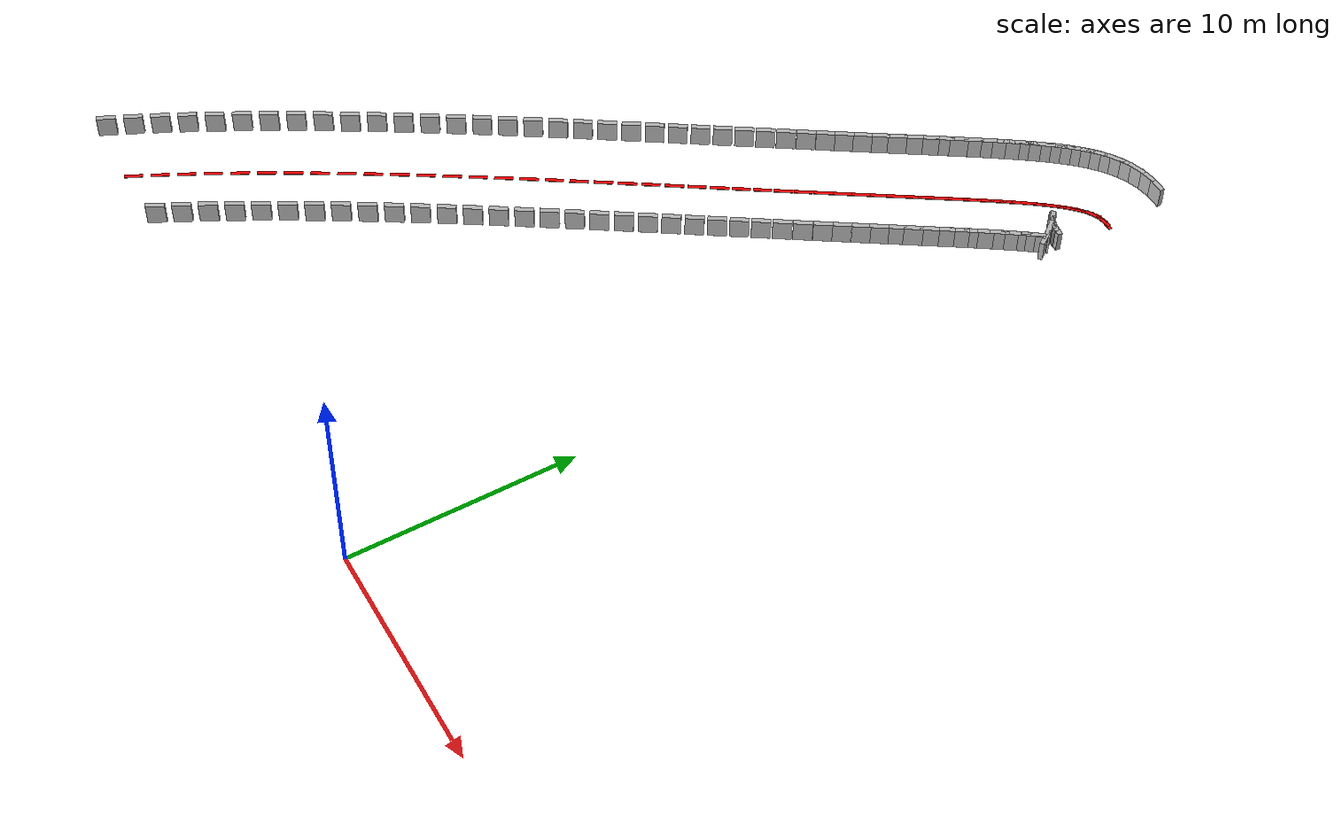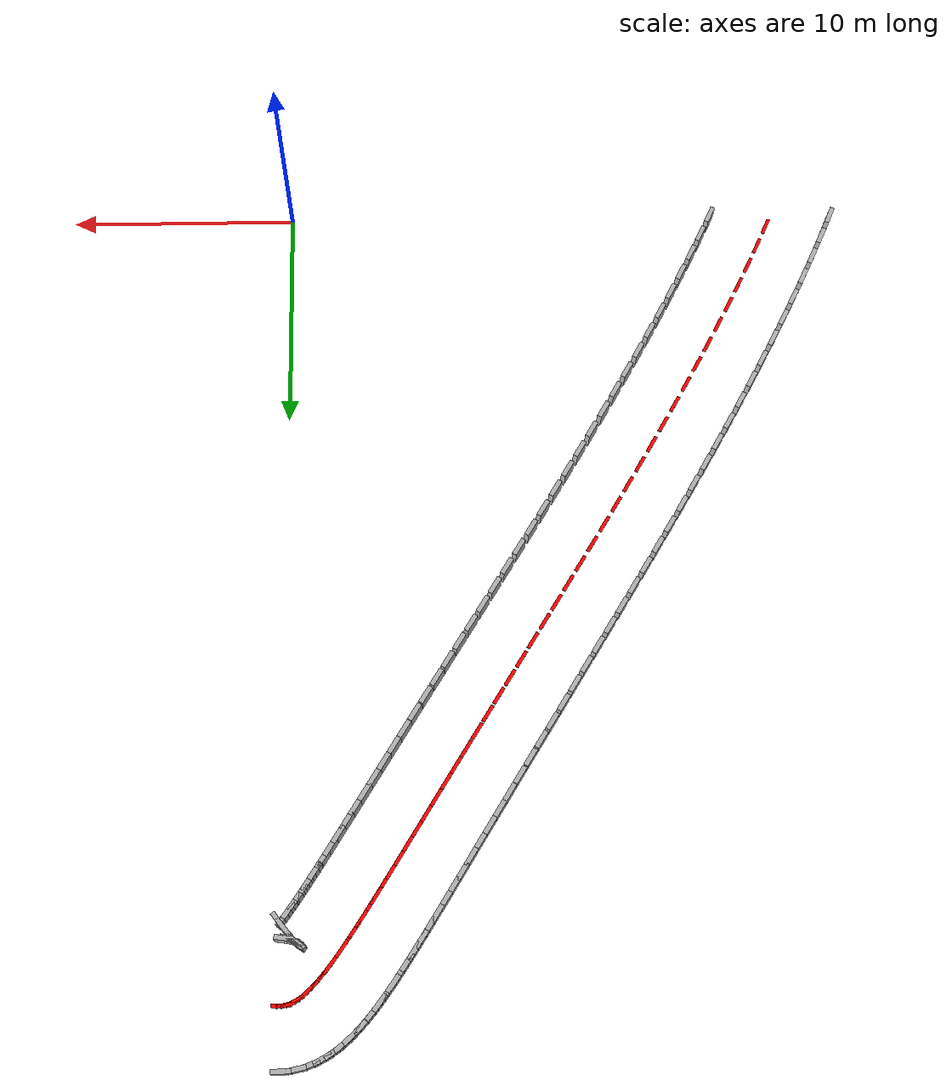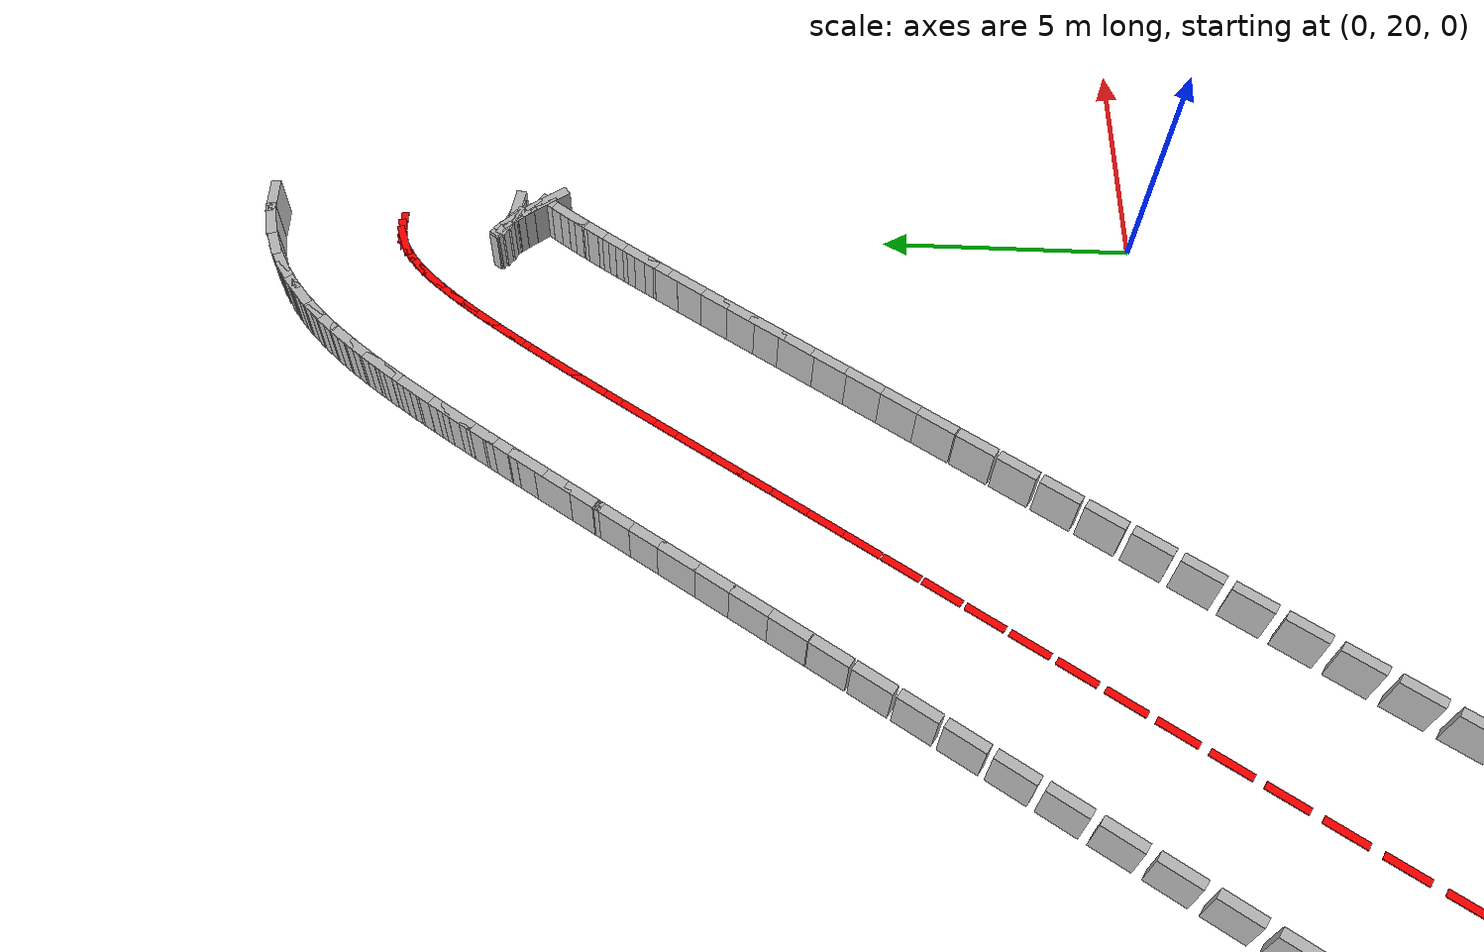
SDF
<sdf version="1.7">
 <model name="track_walls">
  <static>true</static>
  <link name="left_109">
   <pose>-24.509 0.520 0.5 0 0 1.150</pose>
   <collision name="c"><geometry><box><size>0.8 0.2 1.0</size></box></geometry></collision>
   <visual name="v"><geometry><box><size>0.8 0.2 1.0</size></box></geometry></visual>
  </link>
  <link name="left_110">
   <pose>-24.034 1.558 0.5 0 0 1.135</pose>
   <collision name="c"><geometry><box><size>0.8 0.2 1.0</size></box></geometry></collision>
   <visual name="v"><geometry><box><size>0.8 0.2 1.0</size></box></geometry></visual>
  </link>
  <link name="center_110">
   <pose>-21.768 0.502 0.010 0 0 1.135</pose>
   <visual name="v">
    <geometry><box><size>0.8 0.15 0.02</size></box></geometry>
    <material><ambient>1 0 0 1</ambient><diffuse>1 0 0 1</diffuse></material>
   </visual>
  </link>
  <link name="left_111">
   <pose>-23.543 2.593 0.5 0 0 1.121</pose>
   <collision name="c"><geometry><box><size>0.8 0.2 1.0</size></box></geometry></collision>
   <visual name="v"><geometry><box><size>0.8 0.2 1.0</size></box></geometry></visual>
  </link>
  <link name="right_111">
   <pose>-19.041 0.419 0.5 0 0 1.121</pose>
   <collision name="c"><geometry><box><size>0.8 0.2 1.0</size></box></geometry></collision>
   <visual name="v"><geometry><box><size>0.8 0.2 1.0</size></box></geometry></visual>
  </link>
  <link name="center_111">
   <pose>-21.292 1.506 0.010 0 0 1.121</pose>
   <visual name="v">
    <geometry><box><size>0.8 0.15 0.02</size></box></geometry>
    <material><ambient>1 0 0 1</ambient><diffuse>1 0 0 1</diffuse></material>
   </visual>
  </link>
  <link name="left_112">
   <pose>-23.037 3.624 0.5 0 0 1.108</pose>
   <collision name="c"><geometry><box><size>0.8 0.2 1.0</size></box></geometry></collision>
   <visual name="v"><geometry><box><size>0.8 0.2 1.0</size></box></geometry></visual>
  </link>
  <link name="right_112">
   <pose>-18.562 1.393 0.5 0 0 1.108</pose>
   <collision name="c"><geometry><box><size>0.8 0.2 1.0</size></box></geometry></collision>
   <visual name="v"><geometry><box><size>0.8 0.2 1.0</size></box></geometry></visual>
  </link>
  <link name="center_112">
   <pose>-20.800 2.508 0.010 0 0 1.108</pose>
   <visual name="v">
    <geometry><box><size>0.8 0.15 0.02</size></box></geometry>
    <material><ambient>1 0 0 1</ambient><diffuse>1 0 0 1</diffuse></material>
   </visual>
  </link>
  <link name="left_113">
   <pose>-22.517 4.650 0.5 0 0 1.097</pose>
   <collision name="c"><geometry><box><size>0.8 0.2 1.0</size></box></geometry></collision>
   <visual name="v"><geometry><box><size>0.8 0.2 1.0</size></box></geometry></visual>
  </link>
  <link name="right_113">
   <pose>-18.069 2.367 0.5 0 0 1.097</pose>
   <collision name="c"><geometry><box><size>0.8 0.2 1.0</size></box></geometry></collision>
   <visual name="v"><geometry><box><size>0.8 0.2 1.0</size></box></geometry></visual>
  </link>
  <link name="center_113">
   <pose>-20.293 3.509 0.010 0 0 1.097</pose>
   <visual name="v">
    <geometry><box><size>0.8 0.15 0.02</size></box></geometry>
    <material><ambient>1 0 0 1</ambient><diffuse>1 0 0 1</diffuse></material>
   </visual>
  </link>
  <link name="left_114">
   <pose>-21.986 5.672 0.5 0 0 1.086</pose>
   <collision name="c"><geometry><box><size>0.8 0.2 1.0</size></box></geometry></collision>
   <visual name="v"><geometry><box><size>0.8 0.2 1.0</size></box></geometry></visual>
  </link>
  <link name="right_114">
   <pose>-17.563 3.340 0.5 0 0 1.086</pose>
   <collision name="c"><geometry><box><size>0.8 0.2 1.0</size></box></geometry></collision>
   <visual name="v"><geometry><box><size>0.8 0.2 1.0</size></box></geometry></visual>
  </link>
  <link name="center_114">
   <pose>-19.774 4.506 0.010 0 0 1.086</pose>
   <visual name="v">
    <geometry><box><size>0.8 0.15 0.02</size></box></geometry>
    <material><ambient>1 0 0 1</ambient><diffuse>1 0 0 1</diffuse></material>
   </visual>
  </link>
  <link name="left_115">
   <pose>-21.444 6.688 0.5 0 0 1.076</pose>
   <collision name="c"><geometry><box><size>0.8 0.2 1.0</size></box></geometry></collision>
   <visual name="v"><geometry><box><size>0.8 0.2 1.0</size></box></geometry></visual>
  </link>
  <link name="right_115">
   <pose>-17.044 4.312 0.5 0 0 1.076</pose>
   <collision name="c"><geometry><box><size>0.8 0.2 1.0</size></box></geometry></collision>
   <visual name="v"><geometry><box><size>0.8 0.2 1.0</size></box></geometry></visual>
  </link>
  <link name="center_115">
   <pose>-19.244 5.500 0.010 0 0 1.076</pose>
   <visual name="v">
    <geometry><box><size>0.8 0.15 0.02</size></box></geometry>
    <material><ambient>1 0 0 1</ambient><diffuse>1 0 0 1</diffuse></material>
   </visual>
  </link>
  <link name="left_116">
   <pose>-20.892 7.697 0.5 0 0 1.067</pose>
   <collision name="c"><geometry><box><size>0.8 0.2 1.0</size></box></geometry></collision>
   <visual name="v"><geometry><box><size>0.8 0.2 1.0</size></box></geometry></visual>
  </link>
  <link name="right_116">
   <pose>-16.514 5.282 0.5 0 0 1.067</pose>
   <collision name="c"><geometry><box><size>0.8 0.2 1.0</size></box></geometry></collision>
   <visual name="v"><geometry><box><size>0.8 0.2 1.0</size></box></geometry></visual>
  </link>
  <link name="center_116">
   <pose>-18.703 6.489 0.010 0 0 1.067</pose>
   <visual name="v">
    <geometry><box><size>0.8 0.15 0.02</size></box></geometry>
    <material><ambient>1 0 0 1</ambient><diffuse>1 0 0 1</diffuse></material>
   </visual>
  </link>
  <link name="left_117">
   <pose>-20.334 8.699 0.5 0 0 1.058</pose>
   <collision name="c"><geometry><box><size>0.8 0.2 1.0</size></box></geometry></collision>
   <visual name="v"><geometry><box><size>0.8 0.2 1.0</size></box></geometry></visual>
  </link>
  <link name="right_117">
   <pose>-15.976 6.248 0.5 0 0 1.058</pose>
   <collision name="c"><geometry><box><size>0.8 0.2 1.0</size></box></geometry></collision>
   <visual name="v"><geometry><box><size>0.8 0.2 1.0</size></box></geometry></visual>
  </link>
  <link name="center_117">
   <pose>-18.155 7.473 0.010 0 0 1.058</pose>
   <visual name="v">
    <geometry><box><size>0.8 0.15 0.02</size></box></geometry>
    <material><ambient>1 0 0 1</ambient><diffuse>1 0 0 1</diffuse></material>
   </visual>
  </link>
  <link name="left_118">
   <pose>-19.770 9.693 0.5 0 0 1.051</pose>
   <collision name="c"><geometry><box><size>0.8 0.2 1.0</size></box></geometry></collision>
   <visual name="v"><geometry><box><size>0.8 0.2 1.0</size></box></geometry></visual>
  </link>
  <link name="right_118">
   <pose>-15.430 7.209 0.5 0 0 1.051</pose>
   <collision name="c"><geometry><box><size>0.8 0.2 1.0</size></box></geometry></collision>
   <visual name="v"><geometry><box><size>0.8 0.2 1.0</size></box></geometry></visual>
  </link>
  <link name="center_118">
   <pose>-17.600 8.451 0.010 0 0 1.051</pose>
   <visual name="v">
    <geometry><box><size>0.8 0.15 0.02</size></box></geometry>
    <material><ambient>1 0 0 1</ambient><diffuse>1 0 0 1</diffuse></material>
   </visual>
  </link>
  <link name="left_119">
   <pose>-19.201 10.678 0.5 0 0 1.044</pose>
   <collision name="c"><geometry><box><size>0.8 0.2 1.0</size></box></geometry></collision>
   <visual name="v"><geometry><box><size>0.8 0.2 1.0</size></box></geometry></visual>
  </link>
  <link name="right_119">
   <pose>-14.878 8.165 0.5 0 0 1.044</pose>
   <collision name="c"><geometry><box><size>0.8 0.2 1.0</size></box></geometry></collision>
   <visual name="v"><geometry><box><size>0.8 0.2 1.0</size></box></geometry></visual>
  </link>
  <link name="center_119">
   <pose>-17.040 9.422 0.010 0 0 1.044</pose>
   <visual name="v">
    <geometry><box><size>0.8 0.15 0.02</size></box></geometry>
    <material><ambient>1 0 0 1</ambient><diffuse>1 0 0 1</diffuse></material>
   </visual>
  </link>
  <link name="left_120">
   <pose>-18.629 11.655 0.5 0 0 1.038</pose>
   <collision name="c"><geometry><box><size>0.8 0.2 1.0</size></box></geometry></collision>
   <visual name="v"><geometry><box><size>0.8 0.2 1.0</size></box></geometry></visual>
  </link>
  <link name="right_120">
   <pose>-14.322 9.115 0.5 0 0 1.038</pose>
   <collision name="c"><geometry><box><size>0.8 0.2 1.0</size></box></geometry></collision>
   <visual name="v"><geometry><box><size>0.8 0.2 1.0</size></box></geometry></visual>
  </link>
  <link name="center_120">
   <pose>-16.476 10.385 0.010 0 0 1.038</pose>
   <visual name="v">
    <geometry><box><size>0.8 0.15 0.02</size></box></geometry>
    <material><ambient>1 0 0 1</ambient><diffuse>1 0 0 1</diffuse></material>
   </visual>
  </link>
  <link name="left_121">
   <pose>-18.056 12.621 0.5 0 0 1.033</pose>
   <collision name="c"><geometry><box><size>0.8 0.2 1.0</size></box></geometry></collision>
   <visual name="v"><geometry><box><size>0.8 0.2 1.0</size></box></geometry></visual>
  </link>
  <link name="right_121">
   <pose>-13.763 10.058 0.5 0 0 1.033</pose>
   <collision name="c"><geometry><box><size>0.8 0.2 1.0</size></box></geometry></collision>
   <visual name="v"><geometry><box><size>0.8 0.2 1.0</size></box></geometry></visual>
  </link>
  <link name="center_121">
   <pose>-15.909 11.339 0.010 0 0 1.033</pose>
   <visual name="v">
    <geometry><box><size>0.8 0.15 0.02</size></box></geometry>
    <material><ambient>1 0 0 1</ambient><diffuse>1 0 0 1</diffuse></material>
   </visual>
  </link>
  <link name="left_122">
   <pose>-17.482 13.576 0.5 0 0 1.028</pose>
   <collision name="c"><geometry><box><size>0.8 0.2 1.0</size></box></geometry></collision>
   <visual name="v"><geometry><box><size>0.8 0.2 1.0</size></box></geometry></visual>
  </link>
  <link name="right_122">
   <pose>-13.201 10.993 0.5 0 0 1.028</pose>
   <collision name="c"><geometry><box><size>0.8 0.2 1.0</size></box></geometry></collision>
   <visual name="v"><geometry><box><size>0.8 0.2 1.0</size></box></geometry></visual>
  </link>
  <link name="center_122">
   <pose>-15.342 12.285 0.010 0 0 1.028</pose>
   <visual name="v">
    <geometry><box><size>0.8 0.15 0.02</size></box></geometry>
    <material><ambient>1 0 0 1</ambient><diffuse>1 0 0 1</diffuse></material>
   </visual>
  </link>
  <link name="left_123">
   <pose>-16.910 14.520 0.5 0 0 1.024</pose>
   <collision name="c"><geometry><box><size>0.8 0.2 1.0</size></box></geometry></collision>
   <visual name="v"><geometry><box><size>0.8 0.2 1.0</size></box></geometry></visual>
  </link>
  <link name="right_123">
   <pose>-12.640 11.919 0.5 0 0 1.024</pose>
   <collision name="c"><geometry><box><size>0.8 0.2 1.0</size></box></geometry></collision>
   <visual name="v"><geometry><box><size>0.8 0.2 1.0</size></box></geometry></visual>
  </link>
  <link name="center_123">
   <pose>-14.775 13.220 0.010 0 0 1.024</pose>
   <visual name="v">
    <geometry><box><size>0.8 0.15 0.02</size></box></geometry>
    <material><ambient>1 0 0 1</ambient><diffuse>1 0 0 1</diffuse></material>
   </visual>
  </link>
  <link name="left_124">
   <pose>-16.340 15.452 0.5 0 0 1.020</pose>
   <collision name="c"><geometry><box><size>0.8 0.2 1.0</size></box></geometry></collision>
   <visual name="v"><geometry><box><size>0.8 0.2 1.0</size></box></geometry></visual>
  </link>
  <link name="right_124">
   <pose>-12.079 12.836 0.5 0 0 1.020</pose>
   <collision name="c"><geometry><box><size>0.8 0.2 1.0</size></box></geometry></collision>
   <visual name="v"><geometry><box><size>0.8 0.2 1.0</size></box></geometry></visual>
  </link>
  <link name="center_124">
   <pose>-14.209 14.144 0.010 0 0 1.020</pose>
   <visual name="v">
    <geometry><box><size>0.8 0.15 0.02</size></box></geometry>
    <material><ambient>1 0 0 1</ambient><diffuse>1 0 0 1</diffuse></material>
   </visual>
  </link>
  <link name="left_125">
   <pose>-15.773 16.371 0.5 0 0 1.017</pose>
   <collision name="c"><geometry><box><size>0.8 0.2 1.0</size></box></geometry></collision>
   <visual name="v"><geometry><box><size>0.8 0.2 1.0</size></box></geometry></visual>
  </link>
  <link name="right_125">
   <pose>-11.520 13.742 0.5 0 0 1.017</pose>
   <collision name="c"><geometry><box><size>0.8 0.2 1.0</size></box></geometry></collision>
   <visual name="v"><geometry><box><size>0.8 0.2 1.0</size></box></geometry></visual>
  </link>
  <link name="center_125">
   <pose>-13.647 15.057 0.010 0 0 1.017</pose>
   <visual name="v">
    <geometry><box><size>0.8 0.15 0.02</size></box></geometry>
    <material><ambient>1 0 0 1</ambient><diffuse>1 0 0 1</diffuse></material>
   </visual>
  </link>
  <link name="left_126">
   <pose>-15.211 17.277 0.5 0 0 1.014</pose>
   <collision name="c"><geometry><box><size>0.8 0.2 1.0</size></box></geometry></collision>
   <visual name="v"><geometry><box><size>0.8 0.2 1.0</size></box></geometry></visual>
  </link>
  <link name="right_126">
   <pose>-10.965 14.636 0.5 0 0 1.014</pose>
   <collision name="c"><geometry><box><size>0.8 0.2 1.0</size></box></geometry></collision>
   <visual name="v"><geometry><box><size>0.8 0.2 1.0</size></box></geometry></visual>
  </link>
  <link name="center_126">
   <pose>-13.088 15.957 0.010 0 0 1.014</pose>
   <visual name="v">
    <geometry><box><size>0.8 0.15 0.02</size></box></geometry>
    <material><ambient>1 0 0 1</ambient><diffuse>1 0 0 1</diffuse></material>
   </visual>
  </link>
  <link name="left_127">
   <pose>-14.655 18.169 0.5 0 0 1.012</pose>
   <collision name="c"><geometry><box><size>0.8 0.2 1.0</size></box></geometry></collision>
   <visual name="v"><geometry><box><size>0.8 0.2 1.0</size></box></geometry></visual>
  </link>
  <link name="right_127">
   <pose>-10.415 15.519 0.5 0 0 1.012</pose>
   <collision name="c"><geometry><box><size>0.8 0.2 1.0</size></box></geometry></collision>
   <visual name="v"><geometry><box><size>0.8 0.2 1.0</size></box></geometry></visual>
  </link>
  <link name="center_127">
   <pose>-12.535 16.844 0.010 0 0 1.012</pose>
   <visual name="v">
    <geometry><box><size>0.8 0.15 0.02</size></box></geometry>
    <material><ambient>1 0 0 1</ambient><diffuse>1 0 0 1</diffuse></material>
   </visual>
  </link>
  <link name="left_128">
   <pose>-14.106 19.045 0.5 0 0 1.011</pose>
   <collision name="c"><geometry><box><size>0.8 0.2 1.0</size></box></geometry></collision>
   <visual name="v"><geometry><box><size>0.8 0.2 1.0</size></box></geometry></visual>
  </link>
  <link name="right_128">
   <pose>-9.870 16.389 0.5 0 0 1.011</pose>
   <collision name="c"><geometry><box><size>0.8 0.2 1.0</size></box></geometry></collision>
   <visual name="v"><geometry><box><size>0.8 0.2 1.0</size></box></geometry></visual>
  </link>
  <link name="center_128">
   <pose>-11.988 17.717 0.010 0 0 1.011</pose>
   <visual name="v">
    <geometry><box><size>0.8 0.15 0.02</size></box></geometry>
    <material><ambient>1 0 0 1</ambient><diffuse>1 0 0 1</diffuse></material>
   </visual>
  </link>
  <link name="left_129">
   <pose>-13.565 19.907 0.5 0 0 1.009</pose>
   <collision name="c"><geometry><box><size>0.8 0.2 1.0</size></box></geometry></collision>
   <visual name="v"><geometry><box><size>0.8 0.2 1.0</size></box></geometry></visual>
  </link>
  <link name="right_129">
   <pose>-9.333 17.244 0.5 0 0 1.009</pose>
   <collision name="c"><geometry><box><size>0.8 0.2 1.0</size></box></geometry></collision>
   <visual name="v"><geometry><box><size>0.8 0.2 1.0</size></box></geometry></visual>
  </link>
  <link name="center_129">
   <pose>-11.449 18.576 0.010 0 0 1.009</pose>
   <visual name="v">
    <geometry><box><size>0.8 0.15 0.02</size></box></geometry>
    <material><ambient>1 0 0 1</ambient><diffuse>1 0 0 1</diffuse></material>
   </visual>
  </link>
  <link name="left_130">
   <pose>-13.033 20.752 0.5 0 0 1.008</pose>
   <collision name="c"><geometry><box><size>0.8 0.2 1.0</size></box></geometry></collision>
   <visual name="v"><geometry><box><size>0.8 0.2 1.0</size></box></geometry></visual>
  </link>
  <link name="right_130">
   <pose>-8.803 18.086 0.5 0 0 1.008</pose>
   <collision name="c"><geometry><box><size>0.8 0.2 1.0</size></box></geometry></collision>
   <visual name="v"><geometry><box><size>0.8 0.2 1.0</size></box></geometry></visual>
  </link>
  <link name="center_130">
   <pose>-10.918 19.419 0.010 0 0 1.008</pose>
   <visual name="v">
    <geometry><box><size>0.8 0.15 0.02</size></box></geometry>
    <material><ambient>1 0 0 1</ambient><diffuse>1 0 0 1</diffuse></material>
   </visual>
  </link>
  <link name="left_131">
   <pose>-12.510 21.580 0.5 0 0 1.008</pose>
   <collision name="c"><geometry><box><size>0.8 0.2 1.0</size></box></geometry></collision>
   <visual name="v"><geometry><box><size>0.8 0.2 1.0</size></box></geometry></visual>
  </link>
  <link name="right_131">
   <pose>-8.282 18.912 0.5 0 0 1.008</pose>
   <collision name="c"><geometry><box><size>0.8 0.2 1.0</size></box></geometry></collision>
   <visual name="v"><geometry><box><size>0.8 0.2 1.0</size></box></geometry></visual>
  </link>
  <link name="center_131">
   <pose>-10.396 20.246 0.010 0 0 1.008</pose>
   <visual name="v">
    <geometry><box><size>0.8 0.15 0.02</size></box></geometry>
    <material><ambient>1 0 0 1</ambient><diffuse>1 0 0 1</diffuse></material>
   </visual>
  </link>
  <link name="left_132">
   <pose>-11.998 22.392 0.5 0 0 1.008</pose>
   <collision name="c"><geometry><box><size>0.8 0.2 1.0</size></box></geometry></collision>
   <visual name="v"><geometry><box><size>0.8 0.2 1.0</size></box></geometry></visual>
  </link>
  <link name="right_132">
   <pose>-7.770 19.722 0.5 0 0 1.008</pose>
   <collision name="c"><geometry><box><size>0.8 0.2 1.0</size></box></geometry></collision>
   <visual name="v"><geometry><box><size>0.8 0.2 1.0</size></box></geometry></visual>
  </link>
  <link name="center_132">
   <pose>-9.884 21.057 0.010 0 0 1.008</pose>
   <visual name="v">
    <geometry><box><size>0.8 0.15 0.02</size></box></geometry>
    <material><ambient>1 0 0 1</ambient><diffuse>1 0 0 1</diffuse></material>
   </visual>
  </link>
  <link name="left_133">
   <pose>-11.497 23.185 0.5 0 0 1.008</pose>
   <collision name="c"><geometry><box><size>0.8 0.2 1.0</size></box></geometry></collision>
   <visual name="v"><geometry><box><size>0.8 0.2 1.0</size></box></geometry></visual>
  </link>
  <link name="right_133">
   <pose>-7.269 20.516 0.5 0 0 1.008</pose>
   <collision name="c"><geometry><box><size>0.8 0.2 1.0</size></box></geometry></collision>
   <visual name="v"><geometry><box><size>0.8 0.2 1.0</size></box></geometry></visual>
  </link>
  <link name="center_133">
   <pose>-9.383 21.850 0.010 0 0 1.008</pose>
   <visual name="v">
    <geometry><box><size>0.8 0.15 0.02</size></box></geometry>
    <material><ambient>1 0 0 1</ambient><diffuse>1 0 0 1</diffuse></material>
   </visual>
  </link>
  <link name="left_134">
   <pose>-11.008 23.960 0.5 0 0 1.008</pose>
   <collision name="c"><geometry><box><size>0.8 0.2 1.0</size></box></geometry></collision>
   <visual name="v"><geometry><box><size>0.8 0.2 1.0</size></box></geometry></visual>
  </link>
  <link name="right_134">
   <pose>-6.779 21.292 0.5 0 0 1.008</pose>
   <collision name="c"><geometry><box><size>0.8 0.2 1.0</size></box></geometry></collision>
   <visual name="v"><geometry><box><size>0.8 0.2 1.0</size></box></geometry></visual>
  </link>
  <link name="center_134">
   <pose>-8.894 22.626 0.010 0 0 1.008</pose>
   <visual name="v">
    <geometry><box><size>0.8 0.15 0.02</size></box></geometry>
    <material><ambient>1 0 0 1</ambient><diffuse>1 0 0 1</diffuse></material>
   </visual>
  </link>
  <link name="left_135">
   <pose>-10.532 24.715 0.5 0 0 1.008</pose>
   <collision name="c"><geometry><box><size>0.8 0.2 1.0</size></box></geometry></collision>
   <visual name="v"><geometry><box><size>0.8 0.2 1.0</size></box></geometry></visual>
  </link>
  <link name="right_135">
   <pose>-6.302 22.049 0.5 0 0 1.008</pose>
   <collision name="c"><geometry><box><size>0.8 0.2 1.0</size></box></geometry></collision>
   <visual name="v"><geometry><box><size>0.8 0.2 1.0</size></box></geometry></visual>
  </link>
  <link name="center_135">
   <pose>-8.417 23.382 0.010 0 0 1.008</pose>
   <visual name="v">
    <geometry><box><size>0.8 0.15 0.02</size></box></geometry>
    <material><ambient>1 0 0 1</ambient><diffuse>1 0 0 1</diffuse></material>
   </visual>
  </link>
  <link name="left_136">
   <pose>-10.068 25.451 0.5 0 0 1.009</pose>
   <collision name="c"><geometry><box><size>0.8 0.2 1.0</size></box></geometry></collision>
   <visual name="v"><geometry><box><size>0.8 0.2 1.0</size></box></geometry></visual>
  </link>
  <link name="right_136">
   <pose>-5.836 22.788 0.5 0 0 1.009</pose>
   <collision name="c"><geometry><box><size>0.8 0.2 1.0</size></box></geometry></collision>
   <visual name="v"><geometry><box><size>0.8 0.2 1.0</size></box></geometry></visual>
  </link>
  <link name="center_136">
   <pose>-7.952 24.120 0.010 0 0 1.009</pose>
   <visual name="v">
    <geometry><box><size>0.8 0.15 0.02</size></box></geometry>
    <material><ambient>1 0 0 1</ambient><diffuse>1 0 0 1</diffuse></material>
   </visual>
  </link>
  <link name="left_137">
   <pose>-9.617 26.168 0.5 0 0 1.010</pose>
   <collision name="c"><geometry><box><size>0.8 0.2 1.0</size></box></geometry></collision>
   <visual name="v"><geometry><box><size>0.8 0.2 1.0</size></box></geometry></visual>
  </link>
  <link name="right_137">
   <pose>-5.384 23.507 0.5 0 0 1.010</pose>
   <collision name="c"><geometry><box><size>0.8 0.2 1.0</size></box></geometry></collision>
   <visual name="v"><geometry><box><size>0.8 0.2 1.0</size></box></geometry></visual>
  </link>
  <link name="center_137">
   <pose>-7.501 24.837 0.010 0 0 1.010</pose>
   <visual name="v">
    <geometry><box><size>0.8 0.15 0.02</size></box></geometry>
    <material><ambient>1 0 0 1</ambient><diffuse>1 0 0 1</diffuse></material>
   </visual>
  </link>
  <link name="left_138">
   <pose>-9.181 26.863 0.5 0 0 1.010</pose>
   <collision name="c"><geometry><box><size>0.8 0.2 1.0</size></box></geometry></collision>
   <visual name="v"><geometry><box><size>0.8 0.2 1.0</size></box></geometry></visual>
  </link>
  <link name="right_138">
   <pose>-4.945 24.206 0.5 0 0 1.010</pose>
   <collision name="c"><geometry><box><size>0.8 0.2 1.0</size></box></geometry></collision>
   <visual name="v"><geometry><box><size>0.8 0.2 1.0</size></box></geometry></visual>
  </link>
  <link name="center_138">
   <pose>-7.063 25.535 0.010 0 0 1.010</pose>
   <visual name="v">
    <geometry><box><size>0.8 0.15 0.02</size></box></geometry>
    <material><ambient>1 0 0 1</ambient><diffuse>1 0 0 1</diffuse></material>
   </visual>
  </link>
  <link name="left_139">
   <pose>-8.758 27.538 0.5 0 0 1.011</pose>
   <collision name="c"><geometry><box><size>0.8 0.2 1.0</size></box></geometry></collision>
   <visual name="v"><geometry><box><size>0.8 0.2 1.0</size></box></geometry></visual>
  </link>
  <link name="right_139">
   <pose>-4.520 24.884 0.5 0 0 1.011</pose>
   <collision name="c"><geometry><box><size>0.8 0.2 1.0</size></box></geometry></collision>
   <visual name="v"><geometry><box><size>0.8 0.2 1.0</size></box></geometry></visual>
  </link>
  <link name="center_139">
   <pose>-6.639 26.211 0.010 0 0 1.011</pose>
   <visual name="v">
    <geometry><box><size>0.8 0.15 0.02</size></box></geometry>
    <material><ambient>1 0 0 1</ambient><diffuse>1 0 0 1</diffuse></material>
   </visual>
  </link>
  <link name="left_140">
   <pose>-8.349 28.191 0.5 0 0 1.012</pose>
   <collision name="c"><geometry><box><size>0.8 0.2 1.0</size></box></geometry></collision>
   <visual name="v"><geometry><box><size>0.8 0.2 1.0</size></box></geometry></visual>
  </link>
  <link name="right_140">
   <pose>-4.110 25.539 0.5 0 0 1.012</pose>
   <collision name="c"><geometry><box><size>0.8 0.2 1.0</size></box></geometry></collision>
   <visual name="v"><geometry><box><size>0.8 0.2 1.0</size></box></geometry></visual>
  </link>
  <link name="center_140">
   <pose>-6.229 26.865 0.010 0 0 1.012</pose>
   <visual name="v">
    <geometry><box><size>0.8 0.15 0.02</size></box></geometry>
    <material><ambient>1 0 0 1</ambient><diffuse>1 0 0 1</diffuse></material>
   </visual>
  </link>
  <link name="left_141">
   <pose>-7.954 28.823 0.5 0 0 1.012</pose>
   <collision name="c"><geometry><box><size>0.8 0.2 1.0</size></box></geometry></collision>
   <visual name="v"><geometry><box><size>0.8 0.2 1.0</size></box></geometry></visual>
  </link>
  <link name="right_141">
   <pose>-3.714 26.173 0.5 0 0 1.012</pose>
   <collision name="c"><geometry><box><size>0.8 0.2 1.0</size></box></geometry></collision>
   <visual name="v"><geometry><box><size>0.8 0.2 1.0</size></box></geometry></visual>
  </link>
  <link name="center_141">
   <pose>-5.834 27.498 0.010 0 0 1.012</pose>
   <visual name="v">
    <geometry><box><size>0.8 0.15 0.02</size></box></geometry>
    <material><ambient>1 0 0 1</ambient><diffuse>1 0 0 1</diffuse></material>
   </visual>
  </link>
  <link name="left_142">
   <pose>-7.573 29.432 0.5 0 0 1.012</pose>
   <collision name="c"><geometry><box><size>0.8 0.2 1.0</size></box></geometry></collision>
   <visual name="v"><geometry><box><size>0.8 0.2 1.0</size></box></geometry></visual>
  </link>
  <link name="right_142">
   <pose>-3.333 26.783 0.5 0 0 1.012</pose>
   <collision name="c"><geometry><box><size>0.8 0.2 1.0</size></box></geometry></collision>
   <visual name="v"><geometry><box><size>0.8 0.2 1.0</size></box></geometry></visual>
  </link>
  <link name="center_142">
   <pose>-5.453 28.108 0.010 0 0 1.012</pose>
   <visual name="v">
    <geometry><box><size>0.8 0.15 0.02</size></box></geometry>
    <material><ambient>1 0 0 1</ambient><diffuse>1 0 0 1</diffuse></material>
   </visual>
  </link>
  <link name="left_143">
   <pose>-7.206 30.020 0.5 0 0 1.012</pose>
   <collision name="c"><geometry><box><size>0.8 0.2 1.0</size></box></geometry></collision>
   <visual name="v"><geometry><box><size>0.8 0.2 1.0</size></box></geometry></visual>
  </link>
  <link name="right_143">
   <pose>-2.966 27.369 0.5 0 0 1.012</pose>
   <collision name="c"><geometry><box><size>0.8 0.2 1.0</size></box></geometry></collision>
   <visual name="v"><geometry><box><size>0.8 0.2 1.0</size></box></geometry></visual>
  </link>
  <link name="center_143">
   <pose>-5.086 28.694 0.010 0 0 1.012</pose>
   <visual name="v">
    <geometry><box><size>0.8 0.15 0.02</size></box></geometry>
    <material><ambient>1 0 0 1</ambient><diffuse>1 0 0 1</diffuse></material>
   </visual>
  </link>
  <link name="left_144">
   <pose>-6.853 30.584 0.5 0 0 1.011</pose>
   <collision name="c"><geometry><box><size>0.8 0.2 1.0</size></box></geometry></collision>
   <visual name="v"><geometry><box><size>0.8 0.2 1.0</size></box></geometry></visual>
  </link>
  <link name="right_144">
   <pose>-2.615 27.930 0.5 0 0 1.011</pose>
   <collision name="c"><geometry><box><size>0.8 0.2 1.0</size></box></geometry></collision>
   <visual name="v"><geometry><box><size>0.8 0.2 1.0</size></box></geometry></visual>
  </link>
  <link name="center_144">
   <pose>-4.734 29.257 0.010 0 0 1.011</pose>
   <visual name="v">
    <geometry><box><size>0.8 0.15 0.02</size></box></geometry>
    <material><ambient>1 0 0 1</ambient><diffuse>1 0 0 1</diffuse></material>
   </visual>
  </link>
  <link name="left_145">
   <pose>-6.513 31.127 0.5 0 0 1.010</pose>
   <collision name="c"><geometry><box><size>0.8 0.2 1.0</size></box></geometry></collision>
   <visual name="v"><geometry><box><size>0.8 0.2 1.0</size></box></geometry></visual>
  </link>
  <link name="right_145">
   <pose>-2.279 28.466 0.5 0 0 1.010</pose>
   <collision name="c"><geometry><box><size>0.8 0.2 1.0</size></box></geometry></collision>
   <visual name="v"><geometry><box><size>0.8 0.2 1.0</size></box></geometry></visual>
  </link>
  <link name="center_145">
   <pose>-4.396 29.796 0.010 0 0 1.010</pose>
   <visual name="v">
    <geometry><box><size>0.8 0.15 0.02</size></box></geometry>
    <material><ambient>1 0 0 1</ambient><diffuse>1 0 0 1</diffuse></material>
   </visual>
  </link>
  <link name="left_146">
   <pose>-6.185 31.646 0.5 0 0 1.007</pose>
   <collision name="c"><geometry><box><size>0.8 0.2 1.0</size></box></geometry></collision>
   <visual name="v"><geometry><box><size>0.8 0.2 1.0</size></box></geometry></visual>
  </link>
  <link name="right_146">
   <pose>-1.958 28.976 0.5 0 0 1.007</pose>
   <collision name="c"><geometry><box><size>0.8 0.2 1.0</size></box></geometry></collision>
   <visual name="v"><geometry><box><size>0.8 0.2 1.0</size></box></geometry></visual>
  </link>
  <link name="center_146">
   <pose>-4.072 30.311 0.010 0 0 1.007</pose>
   <visual name="v">
    <geometry><box><size>0.8 0.15 0.02</size></box></geometry>
    <material><ambient>1 0 0 1</ambient><diffuse>1 0 0 1</diffuse></material>
   </visual>
  </link>
  <link name="left_147">
   <pose>-5.870 32.143 0.5 0 0 1.004</pose>
   <collision name="c"><geometry><box><size>0.8 0.2 1.0</size></box></geometry></collision>
   <visual name="v"><geometry><box><size>0.8 0.2 1.0</size></box></geometry></visual>
  </link>
  <link name="right_147">
   <pose>-1.653 29.458 0.5 0 0 1.004</pose>
   <collision name="c"><geometry><box><size>0.8 0.2 1.0</size></box></geometry></collision>
   <visual name="v"><geometry><box><size>0.8 0.2 1.0</size></box></geometry></visual>
  </link>
  <link name="center_147">
   <pose>-3.762 30.800 0.010 0 0 1.004</pose>
   <visual name="v">
    <geometry><box><size>0.8 0.15 0.02</size></box></geometry>
    <material><ambient>1 0 0 1</ambient><diffuse>1 0 0 1</diffuse></material>
   </visual>
  </link>
  <link name="left_148">
   <pose>-5.567 32.617 0.5 0 0 0.999</pose>
   <collision name="c"><geometry><box><size>0.8 0.2 1.0</size></box></geometry></collision>
   <visual name="v"><geometry><box><size>0.8 0.2 1.0</size></box></geometry></visual>
  </link>
  <link name="right_148">
   <pose>-1.362 29.912 0.5 0 0 0.999</pose>
   <collision name="c"><geometry><box><size>0.8 0.2 1.0</size></box></geometry></collision>
   <visual name="v"><geometry><box><size>0.8 0.2 1.0</size></box></geometry></visual>
  </link>
  <link name="center_148">
   <pose>-3.465 31.265 0.010 0 0 0.999</pose>
   <visual name="v">
    <geometry><box><size>0.8 0.15 0.02</size></box></geometry>
    <material><ambient>1 0 0 1</ambient><diffuse>1 0 0 1</diffuse></material>
   </visual>
  </link>
  <link name="left_149">
   <pose>-5.274 33.069 0.5 0 0 0.993</pose>
   <collision name="c"><geometry><box><size>0.8 0.2 1.0</size></box></geometry></collision>
   <visual name="v"><geometry><box><size>0.8 0.2 1.0</size></box></geometry></visual>
  </link>
  <link name="right_149">
   <pose>-1.087 30.337 0.5 0 0 0.993</pose>
   <collision name="c"><geometry><box><size>0.8 0.2 1.0</size></box></geometry></collision>
   <visual name="v"><geometry><box><size>0.8 0.2 1.0</size></box></geometry></visual>
  </link>
  <link name="center_149">
   <pose>-3.181 31.703 0.010 0 0 0.993</pose>
   <visual name="v">
    <geometry><box><size>0.8 0.15 0.02</size></box></geometry>
    <material><ambient>1 0 0 1</ambient><diffuse>1 0 0 1</diffuse></material>
   </visual>
  </link>
  <link name="left_150">
   <pose>-4.991 33.499 0.5 0 0 0.984</pose>
   <collision name="c"><geometry><box><size>0.8 0.2 1.0</size></box></geometry></collision>
   <visual name="v"><geometry><box><size>0.8 0.2 1.0</size></box></geometry></visual>
  </link>
  <link name="right_150">
   <pose>-0.827 30.732 0.5 0 0 0.984</pose>
   <collision name="c"><geometry><box><size>0.8 0.2 1.0</size></box></geometry></collision>
   <visual name="v"><geometry><box><size>0.8 0.2 1.0</size></box></geometry></visual>
  </link>
  <link name="center_150">
   <pose>-2.909 32.115 0.010 0 0 0.984</pose>
   <visual name="v">
    <geometry><box><size>0.8 0.15 0.02</size></box></geometry>
    <material><ambient>1 0 0 1</ambient><diffuse>1 0 0 1</diffuse></material>
   </visual>
  </link>
  <link name="left_151">
   <pose>-4.717 33.908 0.5 0 0 0.973</pose>
   <collision name="c"><geometry><box><size>0.8 0.2 1.0</size></box></geometry></collision>
   <visual name="v"><geometry><box><size>0.8 0.2 1.0</size></box></geometry></visual>
  </link>
  <link name="right_151">
   <pose>-0.584 31.095 0.5 0 0 0.973</pose>
   <collision name="c"><geometry><box><size>0.8 0.2 1.0</size></box></geometry></collision>
   <visual name="v"><geometry><box><size>0.8 0.2 1.0</size></box></geometry></visual>
  </link>
  <link name="center_151">
   <pose>-2.650 32.501 0.010 0 0 0.973</pose>
   <visual name="v">
    <geometry><box><size>0.8 0.15 0.02</size></box></geometry>
    <material><ambient>1 0 0 1</ambient><diffuse>1 0 0 1</diffuse></material>
   </visual>
  </link>
  <link name="left_152">
   <pose>-4.449 34.296 0.5 0 0 0.959</pose>
   <collision name="c"><geometry><box><size>0.8 0.2 1.0</size></box></geometry></collision>
   <visual name="v"><geometry><box><size>0.8 0.2 1.0</size></box></geometry></visual>
  </link>
  <link name="right_152">
   <pose>-0.356 31.425 0.5 0 0 0.959</pose>
   <collision name="c"><geometry><box><size>0.8 0.2 1.0</size></box></geometry></collision>
   <visual name="v"><geometry><box><size>0.8 0.2 1.0</size></box></geometry></visual>
  </link>
  <link name="center_152">
   <pose>-2.402 32.861 0.010 0 0 0.959</pose>
   <visual name="v">
    <geometry><box><size>0.8 0.15 0.02</size></box></geometry>
    <material><ambient>1 0 0 1</ambient><diffuse>1 0 0 1</diffuse></material>
   </visual>
  </link>
  <link name="left_153">
   <pose>-4.186 34.665 0.5 0 0 0.941</pose>
   <collision name="c"><geometry><box><size>0.8 0.2 1.0</size></box></geometry></collision>
   <visual name="v"><geometry><box><size>0.8 0.2 1.0</size></box></geometry></visual>
  </link>
  <link name="right_153">
   <pose>-0.145 31.720 0.5 0 0 0.941</pose>
   <collision name="c"><geometry><box><size>0.8 0.2 1.0</size></box></geometry></collision>
   <visual name="v"><geometry><box><size>0.8 0.2 1.0</size></box></geometry></visual>
  </link>
  <link name="center_153">
   <pose>-2.165 33.193 0.010 0 0 0.941</pose>
   <visual name="v">
    <geometry><box><size>0.8 0.15 0.02</size></box></geometry>
    <material><ambient>1 0 0 1</ambient><diffuse>1 0 0 1</diffuse></material>
   </visual>
  </link>
  <link name="left_154">
   <pose>-3.925 35.015 0.5 0 0 0.918</pose>
   <collision name="c"><geometry><box><size>0.8 0.2 1.0</size></box></geometry></collision>
   <visual name="v"><geometry><box><size>0.8 0.2 1.0</size></box></geometry></visual>
  </link>
  <link name="center_154">
   <pose>-1.938 33.497 0.010 0 0 0.918</pose>
   <visual name="v">
    <geometry><box><size>0.8 0.15 0.02</size></box></geometry>
    <material><ambient>1 0 0 1</ambient><diffuse>1 0 0 1</diffuse></material>
   </visual>
  </link>
  <link name="left_155">
   <pose>-3.663 35.348 0.5 0 0 0.890</pose>
   <collision name="c"><geometry><box><size>0.8 0.2 1.0</size></box></geometry></collision>
   <visual name="v"><geometry><box><size>0.8 0.2 1.0</size></box></geometry></visual>
  </link>
  <link name="center_155">
   <pose>-1.721 33.775 0.010 0 0 0.890</pose>
   <visual name="v">
    <geometry><box><size>0.8 0.15 0.02</size></box></geometry>
    <material><ambient>1 0 0 1</ambient><diffuse>1 0 0 1</diffuse></material>
   </visual>
  </link>
  <link name="left_156">
   <pose>-3.396 35.667 0.5 0 0 0.854</pose>
   <collision name="c"><geometry><box><size>0.8 0.2 1.0</size></box></geometry></collision>
   <visual name="v"><geometry><box><size>0.8 0.2 1.0</size></box></geometry></visual>
  </link>
  <link name="center_156">
   <pose>-1.512 34.024 0.010 0 0 0.854</pose>
   <visual name="v">
    <geometry><box><size>0.8 0.15 0.02</size></box></geometry>
    <material><ambient>1 0 0 1</ambient><diffuse>1 0 0 1</diffuse></material>
   </visual>
  </link>
  <link name="left_157">
   <pose>-3.119 35.971 0.5 0 0 0.809</pose>
   <collision name="c"><geometry><box><size>0.8 0.2 1.0</size></box></geometry></collision>
   <visual name="v"><geometry><box><size>0.8 0.2 1.0</size></box></geometry></visual>
  </link>
  <link name="center_157">
   <pose>-1.310 34.246 0.010 0 0 0.809</pose>
   <visual name="v">
    <geometry><box><size>0.8 0.15 0.02</size></box></geometry>
    <material><ambient>1 0 0 1</ambient><diffuse>1 0 0 1</diffuse></material>
   </visual>
  </link>
  <link name="left_158">
   <pose>-2.824 36.264 0.5 0 0 0.752</pose>
   <collision name="c"><geometry><box><size>0.8 0.2 1.0</size></box></geometry></collision>
   <visual name="v"><geometry><box><size>0.8 0.2 1.0</size></box></geometry></visual>
  </link>
  <link name="center_158">
   <pose>-1.116 34.439 0.010 0 0 0.752</pose>
   <visual name="v">
    <geometry><box><size>0.8 0.15 0.02</size></box></geometry>
    <material><ambient>1 0 0 1</ambient><diffuse>1 0 0 1</diffuse></material>
   </visual>
  </link>
  <link name="left_159">
   <pose>-2.502 36.546 0.5 0 0 0.681</pose>
   <collision name="c"><geometry><box><size>0.8 0.2 1.0</size></box></geometry></collision>
   <visual name="v"><geometry><box><size>0.8 0.2 1.0</size></box></geometry></visual>
  </link>
  <link name="center_159">
   <pose>-0.928 34.604 0.010 0 0 0.681</pose>
   <visual name="v">
    <geometry><box><size>0.8 0.15 0.02</size></box></geometry>
    <material><ambient>1 0 0 1</ambient><diffuse>1 0 0 1</diffuse></material>
   </visual>
  </link>
  <link name="left_160">
   <pose>-2.141 36.813 0.5 0 0 0.593</pose>
   <collision name="c"><geometry><box><size>0.8 0.2 1.0</size></box></geometry></collision>
   <visual name="v"><geometry><box><size>0.8 0.2 1.0</size></box></geometry></visual>
  </link>
  <link name="center_160">
   <pose>-0.744 34.740 0.010 0 0 0.593</pose>
   <visual name="v">
    <geometry><box><size>0.8 0.15 0.02</size></box></geometry>
    <material><ambient>1 0 0 1</ambient><diffuse>1 0 0 1</diffuse></material>
   </visual>
  </link>
  <link name="left_161">
   <pose>-1.730 37.060 0.5 0 0 0.485</pose>
   <collision name="c"><geometry><box><size>0.8 0.2 1.0</size></box></geometry></collision>
   <visual name="v"><geometry><box><size>0.8 0.2 1.0</size></box></geometry></visual>
  </link>
  <link name="center_161">
   <pose>-0.565 34.848 0.010 0 0 0.485</pose>
   <visual name="v">
    <geometry><box><size>0.8 0.15 0.02</size></box></geometry>
    <material><ambient>1 0 0 1</ambient><diffuse>1 0 0 1</diffuse></material>
   </visual>
  </link>
  <link name="left_162">
   <pose>-1.258 37.271 0.5 0 0 0.355</pose>
   <collision name="c"><geometry><box><size>0.8 0.2 1.0</size></box></geometry></collision>
   <visual name="v"><geometry><box><size>0.8 0.2 1.0</size></box></geometry></visual>
  </link>
  <link name="center_162">
   <pose>-0.389 34.927 0.010 0 0 0.355</pose>
   <visual name="v">
    <geometry><box><size>0.8 0.15 0.02</size></box></geometry>
    <material><ambient>1 0 0 1</ambient><diffuse>1 0 0 1</diffuse></material>
   </visual>
  </link>
  <link name="left_163">
   <pose>-0.725 37.425 0.5 0 0 0.205</pose>
   <collision name="c"><geometry><box><size>0.8 0.2 1.0</size></box></geometry></collision>
   <visual name="v"><geometry><box><size>0.8 0.2 1.0</size></box></geometry></visual>
  </link>
  <link name="center_163">
   <pose>-0.216 34.977 0.010 0 0 0.205</pose>
   <visual name="v">
    <geometry><box><size>0.8 0.15 0.02</size></box></geometry>
    <material><ambient>1 0 0 1</ambient><diffuse>1 0 0 1</diffuse></material>
   </visual>
  </link>
  <link name="left_164">
   <pose>-0.147 37.497 0.5 0 0 0.042</pose>
   <collision name="c"><geometry><box><size>0.8 0.2 1.0</size></box></geometry></collision>
   <visual name="v"><geometry><box><size>0.8 0.2 1.0</size></box></geometry></visual>
  </link>
  <link name="center_164">
   <pose>-0.043 34.999 0.010 0 0 0.042</pose>
   <visual name="v">
    <geometry><box><size>0.8 0.15 0.02</size></box></geometry>
    <material><ambient>1 0 0 1</ambient><diffuse>1 0 0 1</diffuse></material>
   </visual>
  </link>
  <link name="right_165">
   <pose>-0.181 32.511 0.5 0 0 -0.125</pose>
   <collision name="c"><geometry><box><size>0.8 0.2 1.0</size></box></geometry></collision>
   <visual name="v"><geometry><box><size>0.8 0.2 1.0</size></box></geometry></visual>
  </link>
  <link name="right_166">
   <pose>-0.394 32.555 0.5 0 0 -0.282</pose>
   <collision name="c"><geometry><box><size>0.8 0.2 1.0</size></box></geometry></collision>
   <visual name="v"><geometry><box><size>0.8 0.2 1.0</size></box></geometry></visual>
  </link>
  <link name="right_167">
   <pose>-0.548 32.611 0.5 0 0 -0.422</pose>
   <collision name="c"><geometry><box><size>0.8 0.2 1.0</size></box></geometry></collision>
   <visual name="v"><geometry><box><size>0.8 0.2 1.0</size></box></geometry></visual>
  </link>
  <link name="right_168">
   <pose>-0.634 32.655 0.5 0 0 -0.542</pose>
   <collision name="c"><geometry><box><size>0.8 0.2 1.0</size></box></geometry></collision>
   <visual name="v"><geometry><box><size>0.8 0.2 1.0</size></box></geometry></visual>
  </link>
  <link name="right_169">
   <pose>-0.657 32.670 0.5 0 0 -0.640</pose>
   <collision name="c"><geometry><box><size>0.8 0.2 1.0</size></box></geometry></collision>
   <visual name="v"><geometry><box><size>0.8 0.2 1.0</size></box></geometry></visual>
  </link>
  <link name="right_170">
   <pose>-0.625 32.643 0.5 0 0 -0.719</pose>
   <collision name="c"><geometry><box><size>0.8 0.2 1.0</size></box></geometry></collision>
   <visual name="v"><geometry><box><size>0.8 0.2 1.0</size></box></geometry></visual>
  </link>
  <link name="right_171">
   <pose>-0.550 32.572 0.5 0 0 -0.782</pose>
   <collision name="c"><geometry><box><size>0.8 0.2 1.0</size></box></geometry></collision>
   <visual name="v"><geometry><box><size>0.8 0.2 1.0</size></box></geometry></visual>
  </link>
  <link name="right_172">
   <pose>-0.439 32.456 0.5 0 0 -0.833</pose>
   <collision name="c"><geometry><box><size>0.8 0.2 1.0</size></box></geometry></collision>
   <visual name="v"><geometry><box><size>0.8 0.2 1.0</size></box></geometry></visual>
  </link>
  <link name="right_173">
   <pose>-0.301 32.297 0.5 0 0 -0.873</pose>
   <collision name="c"><geometry><box><size>0.8 0.2 1.0</size></box></geometry></collision>
   <visual name="v"><geometry><box><size>0.8 0.2 1.0</size></box></geometry></visual>
  </link>
  <link name="right_174">
   <pose>-0.138 32.095 0.5 0 0 -0.905</pose>
   <collision name="c"><geometry><box><size>0.8 0.2 1.0</size></box></geometry></collision>
   <visual name="v"><geometry><box><size>0.8 0.2 1.0</size></box></geometry></visual>
  </link>
  <link name="right_175">
   <pose>0.046 31.855 0.5 0 0 -0.930</pose>
   <collision name="c"><geometry><box><size>0.8 0.2 1.0</size></box></geometry></collision>
   <visual name="v"><geometry><box><size>0.8 0.2 1.0</size></box></geometry></visual>
  </link>
 </model>
</sdf>
